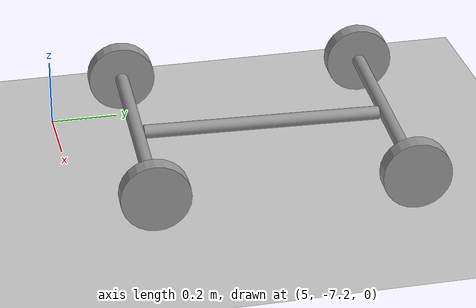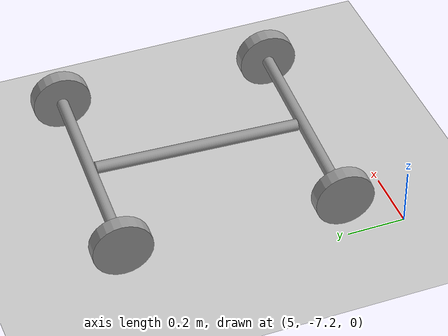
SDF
<sdf version="1.6">
 <world name="default">
  <model name="ground_plane">
   <static>1</static>
   <link name="link">
    <collision name="collision">
     <geometry><plane><normal>0 0 1</normal><size>100 100</size></plane></geometry>
     <surface>
      <contact><collide_bitmask>65535</collide_bitmask></contact>
      <friction><ode><mu>100</mu><mu2>50</mu2></ode></friction>
     </surface>
    </collision>
    <visual name="visual">
     <cast_shadows>0</cast_shadows>
     <geometry><plane><normal>0 0 1</normal><size>100 100</size></plane></geometry>
     <material>
      <script><uri>file://media/materials/scripts/gazebo.material</uri><name>Gazebo/Grey</name></script>
     </material>
    </visual>
   </link>
  </model>
  <model name="RobotModel">
   <link name="link_2_clone">
    <pose>10.2602 -7.39566 0.5 -1.57203 1.5707 3.14035</pose>
    <inertial>
     <mass>1</mass>
     <inertia><ixx>0.145833</ixx><ixy>0</ixy><ixz>0</ixz><iyy>0.145833</iyy><iyz>0</iyz><izz>0.125</izz></inertia>
    </inertial>
    <visual name="visual">
     <geometry><cylinder><radius>0.02</radius><length>0.7</length></cylinder></geometry>
     <material>
      <lighting>1</lighting>
      <script><uri>file://media/materials/scripts/gazebo.material</uri><name>Gazebo/Grey</name></script>
      <shader type="pixel"><normal_map>__default__</normal_map></shader>
      <ambient>0.3 0.3 0.3 1</ambient>
      <diffuse>0.7 0.7 0.7 1</diffuse>
      <specular>0.01 0.01 0.01 1</specular>
      <emissive>0 0 0 1</emissive>
     </material>
    </visual>
    <collision name="collision">
     <geometry><cylinder><radius>0.02</radius><length>0.7</length></cylinder></geometry>
     <surface>
      <friction>
       <ode><mu>1</mu><mu2>1</mu2><fdir1>0 0 0</fdir1><slip1>0</slip1><slip2>0</slip2></ode>
       <torsional>
        <coefficient>1</coefficient>
        <patch_radius>0</patch_radius>
        <surface_radius>0</surface_radius>
        <use_patch_radius>1</use_patch_radius>
        <ode><slip>0</slip></ode>
       </torsional>
      </friction>
      <bounce><restitution_coefficient>0</restitution_coefficient><threshold>1e+06</threshold></bounce>
      <contact>
       <collide_without_contact>0</collide_without_contact>
       <collide_without_contact_bitmask>1</collide_without_contact_bitmask>
       <collide_bitmask>1</collide_bitmask>
       <ode>
        <soft_cfm>0</soft_cfm>
        <soft_erp>0.2</soft_erp>
        <kp>1e+13</kp>
        <kd>1</kd>
        <max_vel>0.01</max_vel>
        <min_depth>0</min_depth>
       </ode>
       <bullet>
        <split_impulse>1</split_impulse>
        <split_impulse_penetration_threshold>-0.01</split_impulse_penetration_threshold>
        <soft_cfm>0</soft_cfm>
        <soft_erp>0.2</soft_erp>
        <kp>1e+13</kp>
        <kd>1</kd>
       </bullet>
      </contact>
     </surface>
    </collision>
   </link>
   <link name="link_2_clone_0">
    <pose>10.2602 -7.76566 0.5 -3.14159 1.5707 -3.14159</pose>
    <inertial>
     <mass>1</mass>
     <inertia><ixx>0.145833</ixx><ixy>0</ixy><ixz>0</ixz><iyy>0.145833</iyy><iyz>0</iyz><izz>0.125</izz></inertia>
    </inertial>
    <visual name="visual">
     <geometry><cylinder><radius>0.02</radius><length>0.7</length></cylinder></geometry>
     <material>
      <lighting>1</lighting>
      <script><uri>file://media/materials/scripts/gazebo.material</uri><name>Gazebo/Grey</name></script>
      <shader type="pixel"><normal_map>__default__</normal_map></shader>
      <ambient>0.3 0.3 0.3 1</ambient>
      <diffuse>0.7 0.7 0.7 1</diffuse>
      <specular>0.01 0.01 0.01 1</specular>
      <emissive>0 0 0 1</emissive>
     </material>
    </visual>
    <collision name="collision">
     <geometry><cylinder><radius>0.02</radius><length>0.7</length></cylinder></geometry>
     <surface>
      <friction>
       <ode><mu>1</mu><mu2>1</mu2><fdir1>0 0 0</fdir1><slip1>0</slip1><slip2>0</slip2></ode>
       <torsional>
        <coefficient>1</coefficient>
        <patch_radius>0</patch_radius>
        <surface_radius>0</surface_radius>
        <use_patch_radius>1</use_patch_radius>
        <ode><slip>0</slip></ode>
       </torsional>
      </friction>
      <bounce><restitution_coefficient>0</restitution_coefficient><threshold>1e+06</threshold></bounce>
      <contact>
       <collide_without_contact>0</collide_without_contact>
       <collide_without_contact_bitmask>1</collide_without_contact_bitmask>
       <collide_bitmask>1</collide_bitmask>
       <ode>
        <soft_cfm>0</soft_cfm>
        <soft_erp>0.2</soft_erp>
        <kp>1e+13</kp>
        <kd>1</kd>
        <max_vel>0.01</max_vel>
        <min_depth>0</min_depth>
       </ode>
       <bullet>
        <split_impulse>1</split_impulse>
        <split_impulse_penetration_threshold>-0.01</split_impulse_penetration_threshold>
        <soft_cfm>0</soft_cfm>
        <soft_erp>0.2</soft_erp>
        <kp>1e+13</kp>
        <kd>1</kd>
       </bullet>
      </contact>
     </surface>
    </collision>
   </link>
   <link name="link_2_clone_0_clone">
    <pose>10.6352 -7.76566 0.5 -3.14159 1.5707 -3.14159</pose>
    <inertial>
     <mass>1</mass>
     <inertia><ixx>0.145833</ixx><ixy>0</ixy><ixz>0</ixz><iyy>0.145833</iyy><iyz>0</iyz><izz>0.125</izz></inertia>
    </inertial>
    <visual name="visual">
     <geometry><cylinder><radius>0.1</radius><length>0.05</length></cylinder></geometry>
     <material>
      <lighting>1</lighting>
      <script><uri>file://media/materials/scripts/gazebo.material</uri><name>Gazebo/Grey</name></script>
      <shader type="pixel"><normal_map>__default__</normal_map></shader>
      <ambient>0.3 0.3 0.3 1</ambient>
      <diffuse>0.7 0.7 0.7 1</diffuse>
      <specular>0.01 0.01 0.01 1</specular>
      <emissive>0 0 0 1</emissive>
     </material>
    </visual>
    <collision name="collision">
     <geometry><cylinder><radius>0.1</radius><length>0.05</length></cylinder></geometry>
     <surface>
      <friction>
       <ode><mu>1</mu><mu2>1</mu2><fdir1>0 0 0</fdir1><slip1>0</slip1><slip2>0</slip2></ode>
       <torsional>
        <coefficient>1</coefficient>
        <patch_radius>0</patch_radius>
        <surface_radius>0</surface_radius>
        <use_patch_radius>1</use_patch_radius>
        <ode><slip>0</slip></ode>
       </torsional>
      </friction>
      <bounce><restitution_coefficient>0</restitution_coefficient><threshold>1e+06</threshold></bounce>
      <contact>
       <collide_without_contact>0</collide_without_contact>
       <collide_without_contact_bitmask>1</collide_without_contact_bitmask>
       <collide_bitmask>1</collide_bitmask>
       <ode>
        <soft_cfm>0</soft_cfm>
        <soft_erp>0.2</soft_erp>
        <kp>1e+13</kp>
        <kd>1</kd>
        <max_vel>0.01</max_vel>
        <min_depth>0</min_depth>
       </ode>
       <bullet>
        <split_impulse>1</split_impulse>
        <split_impulse_penetration_threshold>-0.01</split_impulse_penetration_threshold>
        <soft_cfm>0</soft_cfm>
        <soft_erp>0.2</soft_erp>
        <kp>1e+13</kp>
        <kd>1</kd>
       </bullet>
      </contact>
     </surface>
    </collision>
   </link>
   <link name="link_2_clone_0_clone_0">
    <pose>10.2602 -7.02566 0.5 -3.14159 1.5707 -3.14159</pose>
    <inertial>
     <mass>1</mass>
     <inertia><ixx>0.145833</ixx><ixy>0</ixy><ixz>0</ixz><iyy>0.145833</iyy><iyz>0</iyz><izz>0.125</izz></inertia>
    </inertial>
    <visual name="visual">
     <geometry><cylinder><radius>0.02</radius><length>0.7</length></cylinder></geometry>
     <material>
      <lighting>1</lighting>
      <script><uri>file://media/materials/scripts/gazebo.material</uri><name>Gazebo/Grey</name></script>
      <shader type="pixel"><normal_map>__default__</normal_map></shader>
      <ambient>0.3 0.3 0.3 1</ambient>
      <diffuse>0.7 0.7 0.7 1</diffuse>
      <specular>0.01 0.01 0.01 1</specular>
      <emissive>0 0 0 1</emissive>
     </material>
    </visual>
    <collision name="collision">
     <geometry><cylinder><radius>0.02</radius><length>0.7</length></cylinder></geometry>
     <surface>
      <friction>
       <ode><mu>1</mu><mu2>1</mu2><fdir1>0 0 0</fdir1><slip1>0</slip1><slip2>0</slip2></ode>
       <torsional>
        <coefficient>1</coefficient>
        <patch_radius>0</patch_radius>
        <surface_radius>0</surface_radius>
        <use_patch_radius>1</use_patch_radius>
        <ode><slip>0</slip></ode>
       </torsional>
      </friction>
      <bounce><restitution_coefficient>0</restitution_coefficient><threshold>1e+06</threshold></bounce>
      <contact>
       <collide_without_contact>0</collide_without_contact>
       <collide_without_contact_bitmask>1</collide_without_contact_bitmask>
       <collide_bitmask>1</collide_bitmask>
       <ode>
        <soft_cfm>0</soft_cfm>
        <soft_erp>0.2</soft_erp>
        <kp>1e+13</kp>
        <kd>1</kd>
        <max_vel>0.01</max_vel>
        <min_depth>0</min_depth>
       </ode>
       <bullet>
        <split_impulse>1</split_impulse>
        <split_impulse_penetration_threshold>-0.01</split_impulse_penetration_threshold>
        <soft_cfm>0</soft_cfm>
        <soft_erp>0.2</soft_erp>
        <kp>1e+13</kp>
        <kd>1</kd>
       </bullet>
      </contact>
     </surface>
    </collision>
   </link>
   <link name="link_2_clone_0_clone_clone_0">
    <pose>10.6352 -7.02566 0.5 -3.14159 1.5707 -3.14159</pose>
    <inertial>
     <mass>1</mass>
     <inertia><ixx>0.145833</ixx><ixy>0</ixy><ixz>0</ixz><iyy>0.145833</iyy><iyz>0</iyz><izz>0.125</izz></inertia>
    </inertial>
    <visual name="visual">
     <geometry><cylinder><radius>0.1</radius><length>0.05</length></cylinder></geometry>
     <material>
      <lighting>1</lighting>
      <script><uri>file://media/materials/scripts/gazebo.material</uri><name>Gazebo/Grey</name></script>
      <shader type="pixel"><normal_map>__default__</normal_map></shader>
      <ambient>0.3 0.3 0.3 1</ambient>
      <diffuse>0.7 0.7 0.7 1</diffuse>
      <specular>0.01 0.01 0.01 1</specular>
      <emissive>0 0 0 1</emissive>
     </material>
    </visual>
    <collision name="collision">
     <geometry><cylinder><radius>0.1</radius><length>0.05</length></cylinder></geometry>
     <surface>
      <friction>
       <ode><mu>1</mu><mu2>1</mu2><fdir1>0 0 0</fdir1><slip1>0</slip1><slip2>0</slip2></ode>
       <torsional>
        <coefficient>1</coefficient>
        <patch_radius>0</patch_radius>
        <surface_radius>0</surface_radius>
        <use_patch_radius>1</use_patch_radius>
        <ode><slip>0</slip></ode>
       </torsional>
      </friction>
      <bounce><restitution_coefficient>0</restitution_coefficient><threshold>1e+06</threshold></bounce>
      <contact>
       <collide_without_contact>0</collide_without_contact>
       <collide_without_contact_bitmask>1</collide_without_contact_bitmask>
       <collide_bitmask>1</collide_bitmask>
       <ode>
        <soft_cfm>0</soft_cfm>
        <soft_erp>0.2</soft_erp>
        <kp>1e+13</kp>
        <kd>1</kd>
        <max_vel>0.01</max_vel>
        <min_depth>0</min_depth>
       </ode>
       <bullet>
        <split_impulse>1</split_impulse>
        <split_impulse_penetration_threshold>-0.01</split_impulse_penetration_threshold>
        <soft_cfm>0</soft_cfm>
        <soft_erp>0.2</soft_erp>
        <kp>1e+13</kp>
        <kd>1</kd>
       </bullet>
      </contact>
     </surface>
    </collision>
   </link>
   <link name="link_2_clone_0_clone_clone_0_clone">
    <pose>9.88519 -7.02566 0.5 -3.14159 1.5707 -3.14159</pose>
    <inertial>
     <mass>1</mass>
     <inertia><ixx>0.145833</ixx><ixy>0</ixy><ixz>0</ixz><iyy>0.145833</iyy><iyz>0</iyz><izz>0.125</izz></inertia>
    </inertial>
    <visual name="visual">
     <geometry><cylinder><radius>0.1</radius><length>0.05</length></cylinder></geometry>
     <material>
      <lighting>1</lighting>
      <script><uri>file://media/materials/scripts/gazebo.material</uri><name>Gazebo/Grey</name></script>
      <shader type="pixel"><normal_map>__default__</normal_map></shader>
      <ambient>0.3 0.3 0.3 1</ambient>
      <diffuse>0.7 0.7 0.7 1</diffuse>
      <specular>0.01 0.01 0.01 1</specular>
      <emissive>0 0 0 1</emissive>
     </material>
    </visual>
    <collision name="collision">
     <geometry><cylinder><radius>0.1</radius><length>0.05</length></cylinder></geometry>
     <surface>
      <friction>
       <ode><mu>1</mu><mu2>1</mu2><fdir1>0 0 0</fdir1><slip1>0</slip1><slip2>0</slip2></ode>
       <torsional>
        <coefficient>1</coefficient>
        <patch_radius>0</patch_radius>
        <surface_radius>0</surface_radius>
        <use_patch_radius>1</use_patch_radius>
        <ode><slip>0</slip></ode>
       </torsional>
      </friction>
      <bounce><restitution_coefficient>0</restitution_coefficient><threshold>1e+06</threshold></bounce>
      <contact>
       <collide_without_contact>0</collide_without_contact>
       <collide_without_contact_bitmask>1</collide_without_contact_bitmask>
       <collide_bitmask>1</collide_bitmask>
       <ode>
        <soft_cfm>0</soft_cfm>
        <soft_erp>0.2</soft_erp>
        <kp>1e+13</kp>
        <kd>1</kd>
        <max_vel>0.01</max_vel>
        <min_depth>0</min_depth>
       </ode>
       <bullet>
        <split_impulse>1</split_impulse>
        <split_impulse_penetration_threshold>-0.01</split_impulse_penetration_threshold>
        <soft_cfm>0</soft_cfm>
        <soft_erp>0.2</soft_erp>
        <kp>1e+13</kp>
        <kd>1</kd>
       </bullet>
      </contact>
     </surface>
    </collision>
   </link>
   <link name="link_2_clone_0_clone_clone_1">
    <pose>9.88519 -7.76566 0.5 -3.14159 1.5707 -3.14159</pose>
    <inertial>
     <mass>1</mass>
     <inertia><ixx>0.145833</ixx><ixy>0</ixy><ixz>0</ixz><iyy>0.145833</iyy><iyz>0</iyz><izz>0.125</izz></inertia>
    </inertial>
    <visual name="visual">
     <geometry><cylinder><radius>0.1</radius><length>0.05</length></cylinder></geometry>
     <material>
      <lighting>1</lighting>
      <script><uri>file://media/materials/scripts/gazebo.material</uri><name>Gazebo/Grey</name></script>
      <shader type="pixel"><normal_map>__default__</normal_map></shader>
      <ambient>0.3 0.3 0.3 1</ambient>
      <diffuse>0.7 0.7 0.7 1</diffuse>
      <specular>0.01 0.01 0.01 1</specular>
      <emissive>0 0 0 1</emissive>
     </material>
    </visual>
    <collision name="collision">
     <geometry><cylinder><radius>0.1</radius><length>0.05</length></cylinder></geometry>
     <surface>
      <friction>
       <ode><mu>1</mu><mu2>1</mu2><fdir1>0 0 0</fdir1><slip1>0</slip1><slip2>0</slip2></ode>
       <torsional>
        <coefficient>1</coefficient>
        <patch_radius>0</patch_radius>
        <surface_radius>0</surface_radius>
        <use_patch_radius>1</use_patch_radius>
        <ode><slip>0</slip></ode>
       </torsional>
      </friction>
      <bounce><restitution_coefficient>0</restitution_coefficient><threshold>1e+06</threshold></bounce>
      <contact>
       <collide_without_contact>0</collide_without_contact>
       <collide_without_contact_bitmask>1</collide_without_contact_bitmask>
       <collide_bitmask>1</collide_bitmask>
       <ode>
        <soft_cfm>0</soft_cfm>
        <soft_erp>0.2</soft_erp>
        <kp>1e+13</kp>
        <kd>1</kd>
        <max_vel>0.01</max_vel>
        <min_depth>0</min_depth>
       </ode>
       <bullet>
        <split_impulse>1</split_impulse>
        <split_impulse_penetration_threshold>-0.01</split_impulse_penetration_threshold>
        <soft_cfm>0</soft_cfm>
        <soft_erp>0.2</soft_erp>
        <kp>1e+13</kp>
        <kd>1</kd>
       </bullet>
      </contact>
     </surface>
    </collision>
   </link>
   <joint name="link_2_clone_0_JOINT_3" type="revolute">
    <parent>link_2_clone_0</parent>
    <child>link_2_clone_0_clone</child>
    <axis>
     <xyz>1 0 0</xyz>
     <use_parent_model_frame>0</use_parent_model_frame>
     <limit>
      <lower>-1.79769e+308</lower>
      <upper>1.79769e+308</upper>
      <effort>-1</effort>
      <velocity>-1</velocity>
     </limit>
     <dynamics>
      <spring_reference>0</spring_reference>
      <spring_stiffness>0</spring_stiffness>
      <damping>0</damping>
     </dynamics>
    </axis>
    <physics>
     <ode><limit><cfm>0</cfm><erp>0.2</erp></limit><suspension><cfm>0</cfm><erp>0.2</erp></suspension></ode>
    </physics>
   </joint>
   <joint name="link_2_clone_0_JOINT_4" type="revolute">
    <parent>link_2_clone_0</parent>
    <child>link_2_clone_0_clone_clone_1</child>
    <axis>
     <xyz>1 0 0</xyz>
     <use_parent_model_frame>0</use_parent_model_frame>
     <limit>
      <lower>-1.79769e+308</lower>
      <upper>1.79769e+308</upper>
      <effort>-1</effort>
      <velocity>-1</velocity>
     </limit>
     <dynamics>
      <spring_reference>0</spring_reference>
      <spring_stiffness>0</spring_stiffness>
      <damping>0</damping>
     </dynamics>
    </axis>
    <physics>
     <ode><limit><cfm>0</cfm><erp>0.2</erp></limit><suspension><cfm>0</cfm><erp>0.2</erp></suspension></ode>
    </physics>
   </joint>
   <joint name="link_2_clone_0_clone_0_JOINT_10" type="revolute">
    <parent>link_2_clone_0_clone_0</parent>
    <child>link_2_clone_0_clone_clone_0</child>
    <axis>
     <xyz>1 0 0</xyz>
     <use_parent_model_frame>0</use_parent_model_frame>
     <limit>
      <lower>-1.79769e+308</lower>
      <upper>1.79769e+308</upper>
      <effort>-1</effort>
      <velocity>-1</velocity>
     </limit>
     <dynamics>
      <spring_reference>0</spring_reference>
      <spring_stiffness>0</spring_stiffness>
      <damping>0</damping>
     </dynamics>
    </axis>
    <physics>
     <ode><limit><cfm>0</cfm><erp>0.2</erp></limit><suspension><cfm>0</cfm><erp>0.2</erp></suspension></ode>
    </physics>
   </joint>
   <joint name="link_2_clone_0_clone_0_JOINT_11" type="revolute">
    <parent>link_2_clone_0_clone_0</parent>
    <child>link_2_clone_0_clone_clone_0_clone</child>
    <axis>
     <xyz>1 0 0</xyz>
     <use_parent_model_frame>0</use_parent_model_frame>
     <limit>
      <lower>-1.79769e+308</lower>
      <upper>1.79769e+308</upper>
      <effort>-1</effort>
      <velocity>-1</velocity>
     </limit>
     <dynamics>
      <spring_reference>0</spring_reference>
      <spring_stiffness>0</spring_stiffness>
      <damping>0</damping>
     </dynamics>
    </axis>
    <physics>
     <ode><limit><cfm>0</cfm><erp>0.2</erp></limit><suspension><cfm>0</cfm><erp>0.2</erp></suspension></ode>
    </physics>
   </joint>
   <joint name="link_2_clone_JOINT_2" type="revolute">
    <parent>link_2_clone</parent>
    <child>link_2_clone_0</child>
    <axis>
     <xyz>1 0 0</xyz>
     <use_parent_model_frame>0</use_parent_model_frame>
     <limit>
      <lower>-1.79769e+308</lower>
      <upper>1.79769e+308</upper>
      <effort>-1</effort>
      <velocity>-1</velocity>
     </limit>
     <dynamics>
      <spring_reference>0</spring_reference>
      <spring_stiffness>0</spring_stiffness>
      <damping>0</damping>
     </dynamics>
    </axis>
    <physics>
     <ode><limit><cfm>0</cfm><erp>0.2</erp></limit><suspension><cfm>0</cfm><erp>0.2</erp></suspension></ode>
    </physics>
   </joint>
   <joint name="link_2_clone_JOINT_8" type="revolute">
    <parent>link_2_clone</parent>
    <child>link_2_clone_0_clone_0</child>
    <axis>
     <xyz>1 0 0</xyz>
     <use_parent_model_frame>0</use_parent_model_frame>
     <limit>
      <lower>-1.79769e+308</lower>
      <upper>1.79769e+308</upper>
      <effort>-1</effort>
      <velocity>-1</velocity>
     </limit>
     <dynamics>
      <spring_reference>0</spring_reference>
      <spring_stiffness>0</spring_stiffness>
      <damping>0</damping>
     </dynamics>
    </axis>
    <physics>
     <ode><limit><cfm>0</cfm><erp>0.2</erp></limit><suspension><cfm>0</cfm><erp>0.2</erp></suspension></ode>
    </physics>
   </joint>
   <static>0</static>
   <pose>-4.47331 1.23995 -0.3499 4e-06 7e-06 -0.047571</pose>
  </model>
 </world>
</sdf>
